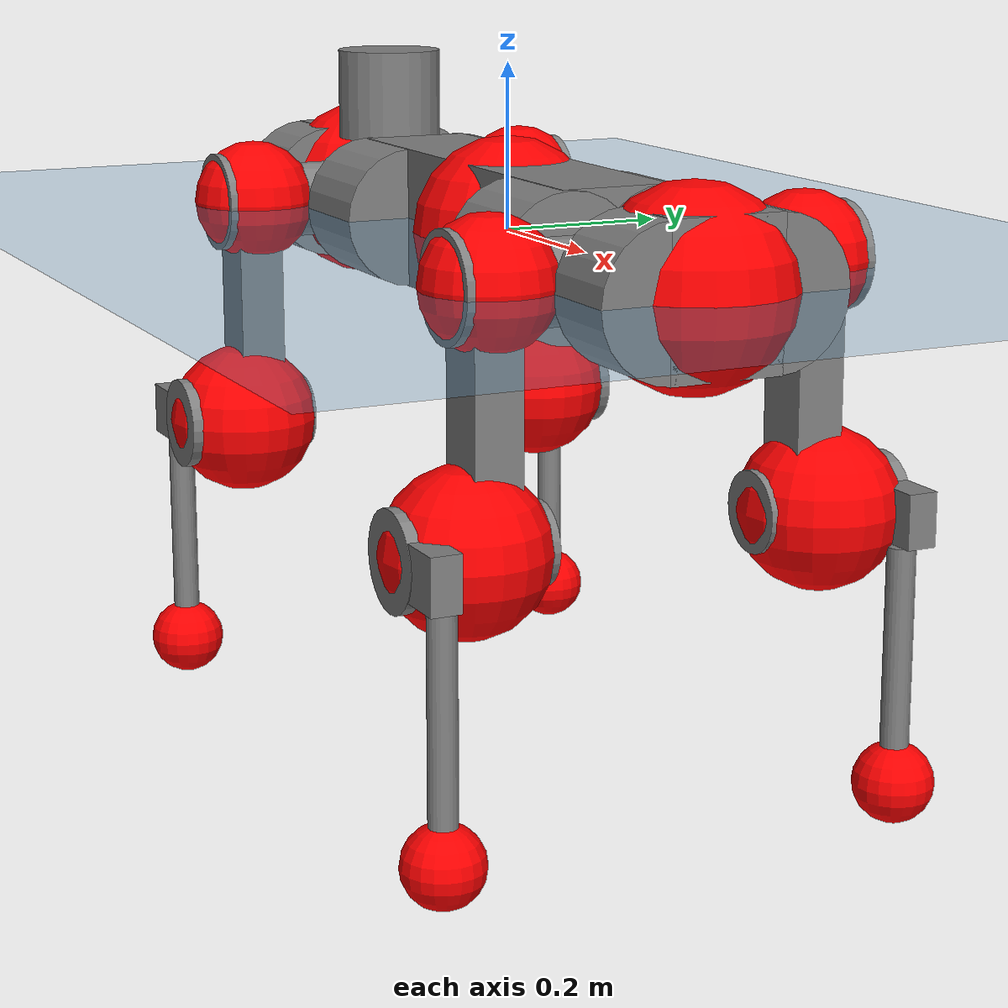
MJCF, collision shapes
<mujoco model="anymal_c">
  <compiler angle="radian" assetdir="assets" balanceinertia="true" inertiafromgeom="false"/>

  <option timestep="0.005" density="1.2" viscosity="2e-05"/>

  <size nkey="1"/>

  <visual>
    <quality shadowsize="8192"/>
    <map shadowclip="0.5"/>
  </visual>

  <default>
    <default class="/">
      <material specular="0" shininess="0.25"/>
      <geom contype="0" conaffinity="0" group="1" solref="-1000 -80"/>
      <site size="0.01 0.005 0.005" group="5"/>
      <general forcelimited="true" forcerange="-80 80" biastype="affine" gainprm="80" biasprm="0 -80 -2"/>
      <default class="anymal_c">
        <joint armature="0.01" damping="0.01" frictionloss="0.1"/>
        <default class="visual">
          <geom type="mesh" group="2"/>
          <default class="visual_zflip"/>
        </default>
        <default class="collision">
          <geom type="cylinder" group="3"/>
          <default class="foot">
            <geom size="0.03 0 0" type="sphere" condim="6" priority="1" friction="0.8 0.02 0.01" solimp="0.015 1 0.03"/>
          </default>
        </default>
      </default>
      <default class="reward_collision_sphere">
        <geom group="5" rgba="1 0 0 1"/>
      </default>
    </default>
  </default>

  <asset>
    <texture type="skybox" colorspace="auto" name="//unnamed_texture_0" builtin="gradient" rgb1="0.95 0.95 0.95" rgb2="0.95 0.95 0.95" width="100" height="600"/>
    <texture type="2d" colorspace="auto" name="texplane" builtin="checker" rgb1="0.345 0.575 0.748" rgb2="0.345 0.575 0.748" markrgb="1 1 1" width="512" height="512"/>
    <texture type="2d" colorspace="linear" name="base" file="base.png"/>
    <texture type="2d" colorspace="linear" name="top_shell" file="top_shell.png"/>
    <texture type="2d" colorspace="linear" name="bottom_shell" file="bottom_shell.png"/>
    <texture type="2d" colorspace="linear" name="remote" file="remote.png"/>
    <texture type="2d" colorspace="linear" name="hatch" file="hatch.png"/>
    <texture type="2d" colorspace="linear" name="handle" file="handle.png"/>
    <texture type="2d" colorspace="linear" name="face" file="face.png"/>
    <texture type="2d" colorspace="linear" name="battery" file="battery.png"/>
    <texture type="2d" colorspace="linear" name="lidar_cage" file="lidar_cage.png"/>
    <texture type="2d" colorspace="linear" name="depth_camera" file="depth_camera.png"/>
    <texture type="2d" colorspace="linear" name="wide_angle_camera" file="wide_angle_camera.png"/>
    <texture type="2d" colorspace="linear" name="lidar" file="lidar.png"/>
    <texture type="2d" colorspace="linear" name="drive" file="drive.png"/>
    <texture type="2d" colorspace="linear" name="hip_l" file="hip_l.png"/>
    <texture type="2d" colorspace="linear" name="shank_l" file="shank_l.png"/>
    <texture type="2d" colorspace="linear" name="foot" file="foot.png"/>
    <texture type="2d" colorspace="linear" name="thigh" file="thigh.png"/>
    <texture type="2d" colorspace="linear" name="shank_r" file="shank_r.png"/>
    <texture type="2d" colorspace="linear" name="hip_r" file="hip_r.png"/>
    <material name="MatPlane" class="/" texture="texplane" texuniform="true" texrepeat="2 2" specular="0.9" shininess="0.5"/>
    <material name="black_plastic" class="/" rgba="0.007 0.007 0.007 1"/>
    <material name="green" class="/" rgba="0.052 0.178 0.033 1"/>
    <material name="red" class="/" rgba="0.178 0.006 0.005 1"/>
    <material name="yellow" class="/" rgba="0.178 0.119 0.006 1"/>
    <material name="lwl" class="/" rgba="0.8 0.8 0.8 1"/>
    <material name="base" class="/" texture="base"/>
    <material name="top_shell" class="/" texture="top_shell"/>
    <material name="bottom_shell" class="/" texture="bottom_shell"/>
    <material name="hip_l" class="/" texture="hip_l"/>
    <material name="thigh" class="/" texture="thigh"/>
    <material name="shank_l" class="/" texture="shank_l"/>
    <material name="foot" class="/" texture="foot"/>
    <material name="hip_r" class="/" texture="hip_r"/>
    <material name="shank" class="/" texture="shank_r"/>
    <material name="hatch" class="/" texture="hatch"/>
    <material name="remote" class="/" texture="remote"/>
    <material name="handle" class="/" texture="handle"/>
    <material name="face" class="/" texture="face"/>
    <material name="depth_camera" class="/" texture="depth_camera"/>
    <material name="wide_angle_camera" class="/" texture="wide_angle_camera"/>
    <material name="battery" class="/" texture="battery"/>
    <material name="lidar_cage" class="/" texture="lidar_cage"/>
    <material name="lidar" class="/" texture="lidar"/>
    <material name="drive" class="/" texture="drive"/>
    <mesh name="base_0" class="/" file="base_0.obj"/>
    <mesh name="base_1" class="/" file="base_1.obj"/>
    <mesh name="base_2" class="/" file="base_2.obj"/>
    <mesh name="base_3" class="/" file="base_3.obj"/>
    <mesh name="base_4" class="/" file="base_4.obj"/>
    <mesh name="base_5" class="/" file="base_5.obj"/>
    <mesh name="top_shell" class="/" file="top_shell.obj"/>
    <mesh name="bottom_shell" class="/" file="bottom_shell.obj"/>
    <mesh name="remote" class="/" file="remote.obj"/>
    <mesh name="handle" class="/" file="handle.obj"/>
    <mesh name="face" class="/" file="face.obj"/>
    <mesh name="wide_angle_camera" class="/" file="wide_angle_camera.obj"/>
    <mesh name="depth_camera" class="/" file="depth_camera.obj"/>
    <mesh name="battery" class="/" file="battery.obj"/>
    <mesh name="lidar_cage" class="/" file="lidar_cage.obj"/>
    <mesh name="lidar" class="/" file="lidar.obj"/>
    <mesh name="drive" class="/" file="drive.obj"/>
    <mesh name="hip_l" class="/" file="hip_l.obj"/>
    <mesh name="thigh" class="/" file="thigh.obj"/>
    <mesh name="shank_l" class="/" file="shank_l.obj"/>
    <mesh name="foot" class="/" file="foot.obj"/>
    <mesh name="hip_r" class="/" file="hip_r.obj"/>
    <mesh name="hatch" class="/" file="hatch.obj"/>
    <mesh name="shank_r" class="/" file="shank_r.obj"/>
  </asset>

  <worldbody>
    <geom name="floor" class="/" size="100 100 0.125" type="plane" group="0" material="MatPlane"/>
    <light name="toplight_shadow" class="/" pos="0 0 5" dir="0.0990148 0.0990148 -0.990148" type="directional" ambient="0.04 0.04 0.04" diffuse="0.55 0.55 0.55" specular="0.12 0.12 0.12"/>
    <light name="toplight_fill" class="/" pos="0 0 5" dir="0.0990148 0.0990148 -0.990148" type="directional" castshadow="false" ambient="0.04 0.04 0.04" diffuse="0.3 0.3 0.3" specular="0.08 0.08 0.08"/>
    <body name="trunk" childclass="anymal_c" pos="0.000323638 -0.00019272 -0.001333" quat="1 -1.73648e-05 -1.81552e-05 -1.99159e-05">
      <inertial pos="0.000378702 -0.00255415 0.0484435" quat="0.498727 0.502806 0.496566 0.501876" mass="16.4591" diaginertia="0.621149 0.315572 0.226833"/>
      <joint name="//unnamed_joint_0" type="free" armature="0" damping="0" frictionloss="0"/>
      <geom name="//unnamed_geom_1" class="visual" material="green" mesh="base_0"/>
      <geom name="//unnamed_geom_2" class="visual" material="yellow" mesh="base_1"/>
      <geom name="//unnamed_geom_3" class="visual" material="red" mesh="base_2"/>
      <geom name="//unnamed_geom_4" class="visual" material="black_plastic" mesh="base_3"/>
      <geom name="//unnamed_geom_5" class="visual" material="lwl" mesh="base_4"/>
      <geom name="//unnamed_geom_6" class="visual" material="base" mesh="base_5"/>
      <geom name="trunk_1" class="collision" size="0.27698 0.0668571 0.0859592" type="box"/>
      <geom name="trunk_2" class="collision" size="0.0859592 0.0692449" pos="0.215984 0.0608436 0" quat="0.707107 0 0.707107 0"/>
      <geom name="trunk_3" class="collision" size="0.0859592 0.0692449" pos="-0.215984 0.0608436 0" quat="0.707107 0 0.707107 0"/>
      <geom name="trunk_4" class="collision" size="0.0859592 0.0692449" pos="0.215984 -0.0608436 0" quat="0.707107 0 0.707107 0"/>
      <geom name="trunk_5" class="collision" size="0.0859592 0.0692449" pos="-0.215984 -0.0608436 0" quat="0.707107 0 0.707107 0"/>
      <geom name="//unnamed_geom_12" class="visual" material="top_shell" mesh="top_shell"/>
      <geom name="//unnamed_geom_13" class="visual" material="bottom_shell" mesh="bottom_shell"/>
      <geom name="//unnamed_geom_14" class="visual" material="remote" mesh="remote"/>
      <geom name="//unnamed_geom_15" class="visual" material="handle" mesh="handle"/>
      <geom name="//unnamed_geom_16" class="visual" pos="0.411611 0 0" quat="1 0 0 0" material="face" mesh="face"/>
      <geom name="trunk_6" class="collision" size="0.0525306 0.0668571 0.0859592" pos="0.466227 0 0" type="box"/>
      <geom name="//unnamed_geom_18" class="collision" size="0.0859592 0.0525306" pos="0.466227 0.0608436 0" quat="0.707107 0 0.707107 0"/>
      <geom name="//unnamed_geom_19" class="collision" size="0.0859592 0.0525306" pos="0.466227 -0.0608436 0" quat="0.707107 0 0.707107 0"/>
      <geom name="//unnamed_geom_20" class="visual" pos="0.458432 0 -0.0293664" quat="0.965926 0 0.258819 0" material="depth_camera" mesh="depth_camera"/>
      <geom name="//unnamed_geom_21" class="visual" pos="0.509424 0 0.0150161" material="wide_angle_camera" mesh="wide_angle_camera"/>
      <geom name="//unnamed_geom_22" class="visual_zflip" pos="-0.411611 0 0" quat="0 0 0 1" material="face" mesh="face"/>
      <geom name="trunk_7" class="collision" size="0.0525306 0.0668571 0.0859592" pos="-0.466227 0 0" quat="0 0 0 1" type="box"/>
      <geom name="//unnamed_geom_24" class="collision" size="0.0859592 0.0525306" pos="-0.466227 -0.0608436 0" quat="0 -0.707107 0 0.707107"/>
      <geom name="//unnamed_geom_25" class="collision" size="0.0859592 0.0525306" pos="-0.466227 0.0608436 0" quat="0 -0.707107 0 0.707107"/>
      <geom name="//unnamed_geom_26" class="visual" pos="-0.458432 0 -0.0293664" quat="0 -0.258819 0 0.965926" material="depth_camera" mesh="depth_camera"/>
      <geom name="//unnamed_geom_27" class="visual_zflip" pos="-0.509424 0 0.0150161" quat="0 0 0 1" material="wide_angle_camera" mesh="wide_angle_camera"/>
      <geom name="//unnamed_geom_28" class="visual" material="battery" mesh="battery"/>
      <geom name="//unnamed_geom_29" class="visual" pos="0 0.064834 0.0290631" quat="0.683013 -0.183013 0.183013 0.683013" material="depth_camera" mesh="depth_camera"/>
      <geom name="//unnamed_geom_30" class="visual" pos="0 -0.064834 0.0290631" quat="0.683013 0.183013 0.183013 -0.683013" material="depth_camera" mesh="depth_camera"/>
      <geom name="//unnamed_geom_31" class="visual" pos="-0.361463 0 0.0737265" quat="1 0 0 0" material="lidar_cage" mesh="lidar_cage"/>
      <geom name="trunk_8" class="collision" size="0.0668571 0.0573061" pos="-0.361463 0 0.133911"/>
      <geom name="//unnamed_geom_33" class="visual" pos="-0.361463 -4.86514e-05 0.142638" quat="0.707107 0 0 -0.707107" material="lidar" mesh="lidar"/>
      <geom name="//unnamed_geom_34" class="visual" pos="0.297809 0.0904438 -2.30958e-09" quat="0.258819 0.965926 0 0" material="drive" mesh="drive"/>
      <geom name="//unnamed_geom_35" class="visual" pos="0.297809 -0.0904438 2.30958e-09" quat="0.258819 -0.965926 0 0" material="drive" mesh="drive"/>
      <geom name="//unnamed_geom_36" class="visual" pos="-0.297809 0.0904438 2.30958e-09" quat="0 0 0.965926 -0.258819" material="drive" mesh="drive"/>
      <geom name="//unnamed_geom_37" class="visual" pos="-0.297809 -0.0904438 -2.30958e-09" quat="0 0 -0.965926 -0.258819" material="drive" mesh="drive"/>
      <geom name="//unnamed_geom_38" class="visual" pos="0.115191 0 0.073225" quat="1 0 0 0" material="hatch" mesh="hatch"/>
      <geom name="//unnamed_geom_39" class="reward_collision_sphere" size="0.114612"/>
      <geom name="//unnamed_geom_40" class="reward_collision_sphere" size="0.114612" pos="0.446863 0 0"/>
      <geom name="//unnamed_geom_41" class="reward_collision_sphere" size="0.114612" pos="-0.446863 0 0"/>
      <site name="imu" pos="0.233856 0.0086386 0.0581817" size="0.00955102"/>
      <camera name="track" pos="0 -1.73839 0" quat="0.707107 0.707107 0 0" mode="trackcom"/>
      <camera name="ego_camera" pos="0.446863 0 -0.0401233" quat="-0.5 -0.5 0.5 0.5"/>
      <body name="LF_HIP" pos="0.297802 0.0915219 0.00116761" quat="0.258828 0.965923 3.78484e-06 -2.48188e-05">
        <inertial pos="0.0587208 -0.0129831 -0.00870226" quat="-0.12551 0.708713 -0.136611 0.680669" mass="2.33186" diaginertia="0.00543918 0.00242929 0.00327872"/>
        <joint name="LF_HAA" pos="0 0 0" axis="0.999932 -0.00434959 0.0107943" range="-0.7293 0.493644" armature="0.0107936" damping="0" frictionloss="0.0989991"/>
        <geom name="//unnamed_geom_42" class="visual" pos="0 -0.000135862 2.23152e-05" quat="0.258819 -0.965926 0 0" material="hip_l" mesh="hip_l"/>
        <geom name="//unnamed_geom_43" class="visual" pos="0.0594824 -0.0704927 -0.0416893" quat="0.183013 -0.683013 0.683013 0.183013" material="drive" mesh="drive"/>
        <geom name="//unnamed_geom_44" class="collision" size="0.0477551 0.0668571" pos="0.0594824 -0.0103954 -0.00692628" quat="-0.353553 -0.612372 0.612372 -0.353553"/>
        <body name="LF_THIGH" pos="0.0599436 -0.0619368 -0.0421982" quat="0.183143 -0.683161 0.68278 0.183196">
          <inertial pos="0.030523 -0.000158102 -0.243958" quat="0.992835 -0.00872916 -0.0845442 0.083991" mass="2.7182" diaginertia="0.0284919 0.0149379 0.004313"/>
          <joint name="LF_HFE" pos="0 0 0" axis="0.999893 -0.00881071 -0.0116676" range="-3.12214 3.1223" armature="0.00930619" damping="0.0147537" frictionloss="0.0843458"/>
          <geom name="//unnamed_geom_45" class="visual" pos="0.00246383 3.88242e-06 0" quat="0.707107 0 0 -0.707107" material="thigh" mesh="thigh"/>
          <geom name="//unnamed_geom_46" class="collision" size="0.0620816 0.0382041" pos="0.0397212 0 0" quat="0.5 0.5 -0.5 -0.5"/>
          <geom name="//unnamed_geom_47" class="collision" size="0.0358163 0.0286531 0.134969" pos="0.0297909 0 -0.14175" quat="0.707107 0 0 -0.707107" type="box"/>
          <geom name="//unnamed_geom_48" class="visual" pos="0.0996008 0 -0.285878" quat="1 0 0 0" material="drive" mesh="drive"/>
          <geom name="//unnamed_geom_49" class="collision" size="0.0477551 0.0668571" pos="0.0300888 0 -0.285878" quat="0.707107 0 0.707107 0"/>
          <geom name="//unnamed_geom_50" class="reward_collision_sphere" size="0.0764081" pos="0.0248257 0 0"/>
          <body name="LF_SHANK" pos="0.101896 -0.00261008 -0.28869" quat="0.999999 0.000562767 -0.0003905 0.000813908">
            <inertial pos="0.00632355 -0.0533303 -0.0799851" quat="0.992518 -0.118403 -0.00285173 -0.0296902" mass="0.50737" diaginertia="0.00979004 0.00455853 0.0011454"/>
            <joint name="LF_KFE" pos="0 0 0" axis="0.999999 0.000719893 0.00155857" range="-3.16423 3.12437" armature="0.00961103" damping="0" frictionloss="0.0998462"/>
            <geom name="//unnamed_geom_51" class="visual" pos="0.0008034 0.00428377 0" quat="0.707107 0 0 -0.707107" material="shank_l" mesh="shank_l"/>
            <geom name="LF_kfe_act" class="collision" size="0.0573061 0.019102" pos="0.0198606 0 0" quat="0.5 0.5 -0.5 -0.5"/>
            <geom name="//unnamed_geom_53" class="collision" size="0.0549174 0.0322347 0.0181469" pos="0.0198606 -0.0499778 0" quat="0.5 0.5 -0.5 -0.5" type="box"/>
            <geom name="//unnamed_geom_54" class="visual" pos="0.0129588 -0.0750651 -0.339012" quat="0.382683 0 0 -0.92388" material="foot" mesh="foot"/>
            <geom name="LF_calf" class="collision" size="0.0167143 0.13491" pos="0.012959 -0.0764456 -0.169506" quat="0.707107 0 0 -0.707107"/>
            <geom name="LF_foot" class="foot" size="0.0314765" pos="0.012959 -0.0764456 -0.316442" quat="0.707107 0 0 -0.707107"/>
            <geom name="//unnamed_geom_57" class="reward_collision_sphere" size="0.0955102" pos="-0.0496515 0 0"/>
            <geom name="//unnamed_geom_58" class="reward_collision_sphere" size="0.0477551" pos="0.012959 -0.0764456 -0.316442"/>
            <site name="LF_foot" class="foot" pos="0.012959 -0.0764456 -0.316442" quat="0.707107 0 0 -0.707107" size="0.00955102"/>
          </body>
        </body>
      </body>
      <body name="RF_HIP" pos="0.297633 -0.0907082 0.000686453" quat="0.258893 -0.965906 -3.13267e-05 9.65884e-06">
        <inertial pos="0.0587007 0.0134737 -0.00801631" quat="0.134814 0.679308 0.12826 0.709869" mass="2.47972" diaginertia="0.00574306 0.00248082 0.0033789"/>
        <joint name="RF_HAA" pos="0 0 0" axis="0.999998 -0.00117191 -0.00182444" range="-0.542128 0.712963" armature="0.00846408" damping="0.0103405" frictionloss="0.0841095"/>
        <geom name="//unnamed_geom_59" class="visual" pos="0 0.000135861 2.23152e-05" quat="0.258819 0.965926 0 0" material="hip_r" mesh="hip_r"/>
        <geom name="//unnamed_geom_60" class="visual" pos="0.0594824 0.0704927 -0.0416893" quat="0.183013 0.683013 0.683013 -0.183013" material="drive" mesh="drive"/>
        <geom name="//unnamed_geom_61" class="collision" size="0.0477551 0.0668571" pos="0.0594824 0.0103954 -0.00692628" quat="-0.353553 0.612372 0.612372 0.353553"/>
        <body name="RF_THIGH" pos="0.060328 0.0656989 -0.04249" quat="0.182929 0.683091 0.682974 -0.182947">
          <inertial pos="0.0304784 -0.000561987 -0.246385" quat="0.992844 0.00557115 -0.077545 0.0906397" mass="2.5321" diaginertia="0.0286571 0.0146679 0.00414354"/>
          <joint name="RF_HFE" pos="0 0 0" axis="0.999981 0.00526463 -0.00328844" stiffness="0.00618022" range="-3.08988 3.16336" armature="0.00975491" damping="0" frictionloss="0.107997"/>
          <geom name="//unnamed_geom_62" class="visual" pos="0.00246383 3.88242e-06 0" quat="0.707107 0 0 -0.707107" material="thigh" mesh="thigh"/>
          <geom name="//unnamed_geom_63" class="collision" size="0.0620816 0.0382041" pos="0.0397212 0 0" quat="0.5 0.5 0.5 0.5"/>
          <geom name="//unnamed_geom_64" class="collision" size="0.0358163 0.0286531 0.134969" pos="0.0297909 0 -0.14175" quat="0.707107 0 0 0.707107" type="box"/>
          <geom name="//unnamed_geom_65" class="visual" pos="0.0996008 0 -0.285878" quat="1 0 0 0" material="drive" mesh="drive"/>
          <geom name="//unnamed_geom_66" class="collision" size="0.0477551 0.0668571" pos="0.0300888 0 -0.285878" quat="0.707107 0 0.707107 0"/>
          <geom name="//unnamed_geom_67" class="reward_collision_sphere" size="0.0764081" pos="0.0248257 0 0"/>
          <body name="RF_SHANK" pos="0.101296 -0.00210732 -0.286503" quat="1 -6.13854e-05 -0.000196469 -4.49047e-05">
            <inertial pos="0.00595834 0.0527332 -0.0781249" quat="0.993054 0.115394 8.74933e-05 0.0229913" mass="0.514244" diaginertia="0.00946902 0.00446024 0.0011418"/>
            <joint name="RF_KFE" pos="0 0 0" axis="0.999999 0.000344582 0.00130019" range="-3.14111 3.15303" armature="0.0100347" damping="0.0078318" frictionloss="0.0830556"/>
            <geom name="//unnamed_geom_68" class="visual" pos="0.000803396 -0.00428376 0" quat="0.707107 0 0 0.707107" material="shank" mesh="shank_r"/>
            <geom name="RF_kfe_act" class="collision" size="0.0573061 0.019102" pos="0.0198606 0 0" quat="0.5 0.5 0.5 0.5"/>
            <geom name="//unnamed_geom_70" class="collision" size="0.0549174 0.0322347 0.0181469" pos="0.0198606 0.0499778 0" quat="0.5 0.5 0.5 0.5" type="box"/>
            <geom name="//unnamed_geom_71" class="visual" pos="0.0129592 0.0750651 -0.339012" quat="0.382683 0 0 0.92388" material="foot" mesh="foot"/>
            <geom name="RF_calf" class="collision" size="0.0167143 0.13491" pos="0.012959 0.0764456 -0.169506" quat="0.707107 0 0 0.707107"/>
            <geom name="RF_foot" class="foot" size="0.0267651" pos="0.012959 0.0764456 -0.316442" quat="0.707107 0 0 0.707107"/>
            <geom name="//unnamed_geom_74" class="reward_collision_sphere" size="0.0955102" pos="-0.0496515 0 0"/>
            <geom name="//unnamed_geom_75" class="reward_collision_sphere" size="0.0477551" pos="0.012959 0.0764456 -0.316442"/>
            <site name="RF_foot" class="foot" pos="0.012959 0.0764456 -0.316442" quat="0.707107 0 0 0.707107" size="0.00955102"/>
          </body>
        </body>
      </body>
      <body name="LH_HIP" pos="-0.299872 0.0906696 0.000568432" quat="-7.87454e-05 -0.000121491 0.965829 -0.259179">
        <inertial pos="0.05611 0.0154833 -0.00779957" quat="0.132519 0.681172 0.128338 0.7085" mass="2.40444" diaginertia="0.00556254 0.00245112 0.0031535"/>
        <joint name="LH_HAA" pos="0 0 0" axis="0.999996 -0.00290223 0.000433407" stiffness="0.000927152" range="-0.510183 0.671073" armature="0.00827059" damping="0.00981102" frictionloss="0.0930922"/>
        <geom name="//unnamed_geom_76" class="visual" pos="0 0.000135861 2.23152e-05" quat="-0.258819 -0.965926 0 0" material="hip_r" mesh="hip_r"/>
        <geom name="//unnamed_geom_77" class="visual" pos="0.0594824 0.0704927 -0.0416893" quat="0.183013 0.683013 0.683013 -0.183013" material="drive" mesh="drive"/>
        <geom name="//unnamed_geom_78" class="collision" size="0.0477551 0.0668571" pos="0.0594824 0.0103954 -0.00692628" quat="-0.353553 0.612372 0.612372 0.353553"/>
        <body name="LH_THIGH" pos="0.0575183 0.0605421 -0.0413864" quat="0.182987 0.68312 0.68294 -0.18291">
          <inertial pos="0.0307451 0.00185894 -0.24577" quat="0.992935 -0.00657706 -0.0794154 0.0879237" mass="2.68291" diaginertia="0.0292637 0.0147219 0.00420195"/>
          <joint name="LH_HFE" pos="0 0 0" axis="0.999944 0.0101481 0.00306386" range="-3.14618 3.13754" armature="0.00951163" damping="0.010004" frictionloss="0.0913916"/>
          <geom name="//unnamed_geom_79" class="visual" pos="0.00246383 3.88242e-06 0" quat="0.707107 0 0 -0.707107" material="thigh" mesh="thigh"/>
          <geom name="//unnamed_geom_80" class="collision" size="0.0620816 0.0382041" pos="0.0397212 0 0" quat="0.5 0.5 -0.5 -0.5"/>
          <geom name="//unnamed_geom_81" class="collision" size="0.0358163 0.0286531 0.134969" pos="0.0297909 0 -0.14175" quat="0.707107 0 0 -0.707107" type="box"/>
          <geom name="//unnamed_geom_82" class="visual" pos="0.0996008 0 -0.285878" quat="1 0 0 0" material="drive" mesh="drive"/>
          <geom name="//unnamed_geom_83" class="collision" size="0.0477551 0.0668571" pos="0.0300888 0 -0.285878" quat="0.707107 0 0.707107 0"/>
          <geom name="//unnamed_geom_84" class="reward_collision_sphere" size="0.0764081" pos="0.0248257 0 0"/>
          <body name="LH_SHANK" pos="0.0986498 -7.78383e-05 -0.285796" quat="1 -0.00011958 -2.45027e-05 -1.6064e-05">
            <inertial pos="0.00541632 0.0533444 -0.0807947" quat="0.993431 0.11324 0.00655944 0.0151165" mass="0.510304" diaginertia="0.00983875 0.00456094 0.00109464"/>
            <joint name="LH_KFE" pos="0 0 0" axis="0.999889 -0.00339675 0.0145154" stiffness="0.00121382" range="-3.1345 3.1428" armature="0.00876344" damping="0.00780279" frictionloss="0.100578"/>
            <geom name="//unnamed_geom_85" class="visual" pos="0.000803396 -0.00428376 0" quat="-0.707107 0 0 -0.707107" material="shank" mesh="shank_r"/>
            <geom name="LH_kfe_act" class="collision" size="0.0573061 0.019102" pos="0.0198606 0 0" quat="0.5 0.5 -0.5 -0.5"/>
            <geom name="//unnamed_geom_87" class="collision" size="0.0549174 0.0322347 0.0181469" pos="0.0198606 0.0499778 0" quat="0.5 0.5 -0.5 -0.5" type="box"/>
            <geom name="//unnamed_geom_88" class="visual" pos="0.0129592 0.0750651 -0.339012" quat="-0.382683 0 0 -0.92388" material="foot" mesh="foot"/>
            <geom name="LH_calf" class="collision" size="0.0167143 0.13491" pos="0.012959 0.0764456 -0.169506" quat="0.707107 0 0 -0.707107"/>
            <geom name="LH_foot" class="foot" size="0.0343801" pos="0.012959 0.0764456 -0.316442" quat="0.707107 0 0 -0.707107"/>
            <geom name="//unnamed_geom_91" class="reward_collision_sphere" size="0.0955102" pos="-0.0496515 0 0"/>
            <geom name="//unnamed_geom_92" class="reward_collision_sphere" size="0.0477551" pos="0.012959 0.0764456 -0.316442"/>
            <site name="LH_foot" class="foot" pos="0.012959 0.0764456 -0.316442" quat="0.707107 0 0 -0.707107" size="0.00955102"/>
          </body>
        </body>
      </body>
      <body name="RH_HIP" pos="-0.29748 -0.0935401 0.000763866" quat="0.000416111 -1.99302e-05 -0.965707 -0.259632">
        <inertial pos="0.0537509 -0.0132863 -0.00632669" quat="-0.125762 0.709985 -0.140032 0.678599" mass="2.42319" diaginertia="0.00562974 0.0024404 0.00323125"/>
        <joint name="RH_HAA" pos="0 0 0" axis="1 -0.000146657 0.000365077" range="-0.767486 0.546014" armature="0.00949221" damping="0.00421918" frictionloss="0.0946626"/>
        <geom name="//unnamed_geom_93" class="visual" pos="0 -0.000135862 2.23152e-05" quat="-0.258819 0.965926 0 0" material="hip_l" mesh="hip_l"/>
        <geom name="//unnamed_geom_94" class="visual" pos="0.0594824 -0.0704927 -0.0416893" quat="-0.183013 0.683013 -0.683013 -0.183013" material="drive" mesh="drive"/>
        <geom name="//unnamed_geom_95" class="collision" size="0.0477551 0.0668571" pos="0.0594824 -0.0103954 -0.00692628" quat="0.353553 0.612372 -0.612372 0.353553"/>
        <body name="RH_THIGH" pos="0.0598185 -0.0632616 -0.0405747" quat="-0.183034 0.683031 -0.682978 -0.18305">
          <inertial pos="0.032402 0.00100035 -0.246838" quat="0.993183 -0.0051862 -0.0805382 0.0841037" mass="2.50234" diaginertia="0.0274654 0.0144228 0.00406123"/>
          <joint name="RH_HFE" pos="0 0 0" axis="0.999971 -0.00533091 0.00543068" range="-3.13043 3.13632" armature="0.00982829" damping="0.0118744" frictionloss="0.0942136"/>
          <geom name="//unnamed_geom_96" class="visual" pos="0.00246383 3.88242e-06 0" quat="0.707107 0 0 -0.707107" material="thigh" mesh="thigh"/>
          <geom name="//unnamed_geom_97" class="collision" size="0.0620816 0.0382041" pos="0.0397212 0 0" quat="0.5 0.5 0.5 0.5"/>
          <geom name="//unnamed_geom_98" class="collision" size="0.0358163 0.0286531 0.134969" pos="0.0297909 0 -0.14175" quat="0.707107 0 0 0.707107" type="box"/>
          <geom name="//unnamed_geom_99" class="visual" pos="0.0996008 0 -0.285878" quat="1 0 0 0" material="drive" mesh="drive"/>
          <geom name="//unnamed_geom_100" class="collision" size="0.0477551 0.0668571" pos="0.0300888 0 -0.285878" quat="0.707107 0 0.707107 0"/>
          <geom name="//unnamed_geom_101" class="reward_collision_sphere" size="0.0764081" pos="0.0248257 0 0"/>
          <body name="RH_SHANK" pos="0.0972432 0.00147162 -0.286572" quat="1 -2.30287e-05 5.61029e-05 -9.21352e-05">
            <inertial pos="0.00624754 -0.0529949 -0.0804013" quat="0.992288 -0.118654 -0.000372649 -0.0358477" mass="0.515366" diaginertia="0.00981546 0.0047282 0.00114988"/>
            <joint name="RH_KFE" pos="0 0 0" axis="0.999993 -0.00245503 0.00280347" stiffness="0.00228433" range="-3.12442 3.15563" armature="0.00829109" damping="0.00240394" frictionloss="0.0956752"/>
            <geom name="//unnamed_geom_102" class="visual" pos="0.0008034 0.00428377 0" quat="0.707107 0 0 -0.707107" material="shank_l" mesh="shank_l"/>
            <geom name="RH_kfe_act" class="collision" size="0.0573061 0.019102" pos="0.0198606 0 0" quat="0.5 0.5 0.5 0.5"/>
            <geom name="//unnamed_geom_104" class="collision" size="0.0549174 0.0322347 0.0181469" pos="0.0198606 -0.0499778 0" quat="0.5 0.5 0.5 0.5" type="box"/>
            <geom name="//unnamed_geom_105" class="visual" pos="0.0129588 -0.0750651 -0.339012" quat="0.382683 0 0 -0.92388" material="foot" mesh="foot"/>
            <geom name="RH_calf" class="collision" size="0.0167143 0.13491" pos="0.012959 -0.0764456 -0.169506" quat="0.707107 0 0 0.707107"/>
            <geom name="RH_foot" class="foot" size="0.0242695" pos="0.012959 -0.0764456 -0.316442" quat="0.707107 0 0 0.707107"/>
            <geom name="//unnamed_geom_108" class="reward_collision_sphere" size="0.0955102" pos="-0.0496515 0 0"/>
            <geom name="//unnamed_geom_109" class="reward_collision_sphere" size="0.0477551" pos="0.012959 -0.0764456 -0.316442"/>
            <site name="RH_foot" class="foot" pos="0.012959 -0.0764456 -0.316442" quat="0.707107 0 0 0.707107" size="0.00955102"/>
          </body>
        </body>
      </body>
    </body>
  </worldbody>

  <contact>
    <pair class="/" geom1="floor" geom2="LF_foot" name="//unnamed_contact_0"/>
    <pair class="/" geom1="floor" geom2="RF_foot" name="//unnamed_contact_1"/>
    <pair class="/" geom1="floor" geom2="LH_foot" name="//unnamed_contact_2"/>
    <pair class="/" geom1="floor" geom2="RH_foot" name="//unnamed_contact_3"/>
  </contact>

  <actuator>
    <general name="LF_HAA" class="/" joint="LF_HAA" forcerange="-78.2173 78.2173" gainprm="82.105" biasprm="0 -82.105 -1.86151"/>
    <general name="LF_HFE" class="/" joint="LF_HFE" forcerange="-75.703 75.703" gainprm="82.105" biasprm="0 -82.105 -1.86151"/>
    <general name="LF_KFE" class="/" joint="LF_KFE" forcerange="-78.296 78.296" gainprm="82.105" biasprm="0 -82.105 -1.86151"/>
    <general name="RF_HAA" class="/" joint="RF_HAA" forcerange="-74.9405 74.9405" gainprm="82.105" biasprm="0 -82.105 -1.86151"/>
    <general name="RF_HFE" class="/" joint="RF_HFE" forcerange="-78.0567 78.0567" gainprm="82.105" biasprm="0 -82.105 -1.86151"/>
    <general name="RF_KFE" class="/" joint="RF_KFE" forcerange="-70.416 70.416" gainprm="82.105" biasprm="0 -82.105 -1.86151"/>
    <general name="LH_HAA" class="/" joint="LH_HAA" forcerange="-77.0483 77.0483" gainprm="82.105" biasprm="0 -82.105 -1.86151"/>
    <general name="LH_HFE" class="/" joint="LH_HFE" forcerange="-70.5544 70.5544" gainprm="82.105" biasprm="0 -82.105 -1.86151"/>
    <general name="LH_KFE" class="/" joint="LH_KFE" forcerange="-77.9625 77.9625" gainprm="82.105" biasprm="0 -82.105 -1.86151"/>
    <general name="RH_HAA" class="/" joint="RH_HAA" forcerange="-79.671 79.671" gainprm="82.105" biasprm="0 -82.105 -1.86151"/>
    <general name="RH_HFE" class="/" joint="RH_HFE" forcerange="-69.606 69.606" gainprm="82.105" biasprm="0 -82.105 -1.86151"/>
    <general name="RH_KFE" class="/" joint="RH_KFE" forcerange="-82.7247 82.7247" gainprm="82.105" biasprm="0 -82.105 -1.86151"/>
  </actuator>

  <sensor>
    <gyro site="imu" name="imu_angular_velocity"/>
    <velocimeter site="imu" name="imu_linear_velocity"/>
    <framelinvel objtype="site" objname="LF_foot" name="LF_foot_global_linear_velocity"/>
    <framelinvel objtype="site" objname="RF_foot" name="RF_foot_global_linear_velocity"/>
    <framelinvel objtype="site" objname="LH_foot" name="LH_foot_global_linear_velocity"/>
    <framelinvel objtype="site" objname="RH_foot" name="RH_foot_global_linear_velocity"/>
  </sensor>

  <keyframe>
    <key name="home" qpos="0 0 0.55 1 0 0 0 0 0.4 -0.8 0 -0.4 0.8 0 -0.4 0.8 0 0.4 -0.8"/>
  </keyframe>
</mujoco>
